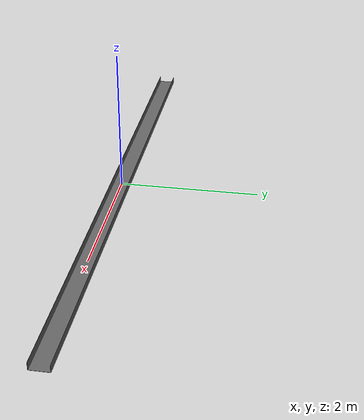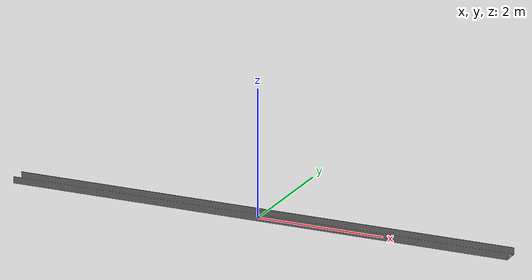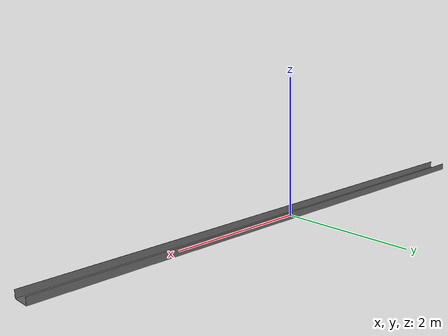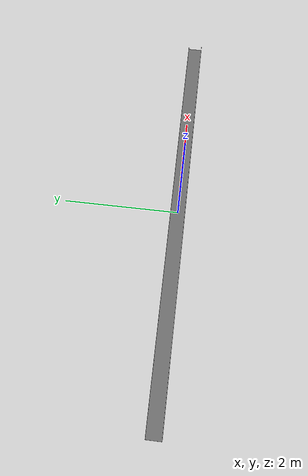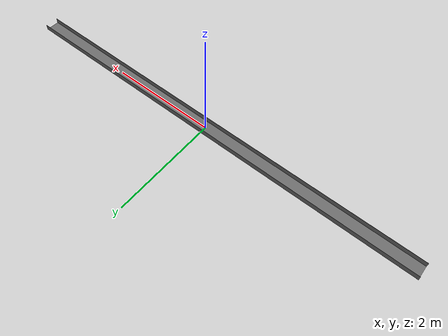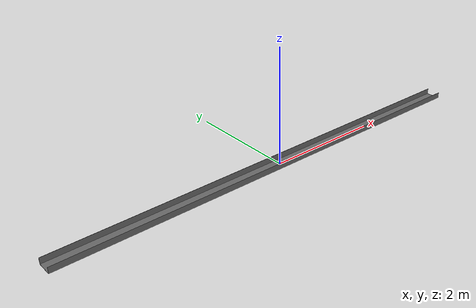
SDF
<?xml version="1.0"?>
<sdf version="1.4">
  <model name='uchannel_pick'>
    <static>1</static>
    <link name='link'>
      <pose>0 0 0 0 0 0</pose>
      <collision name='collision'>
        <geometry>
          <mesh>
            <uri>model://uchannel_pick/mesh/uchannel_pick.dae</uri>
            <scale>1 1 1</scale>
          </mesh>
        </geometry>
      </collision>
      <visual name='visual'>
        <cast_shadows>1</cast_shadows>
        <transparency>0</transparency>
        <geometry>
          <mesh>
            <uri>model://uchannel_pick/mesh/uchannel_pick.dae</uri>
            <scale>1 1 1</scale>
          </mesh>
        </geometry>
      </visual>
    </link>
  </model>
</sdf>
